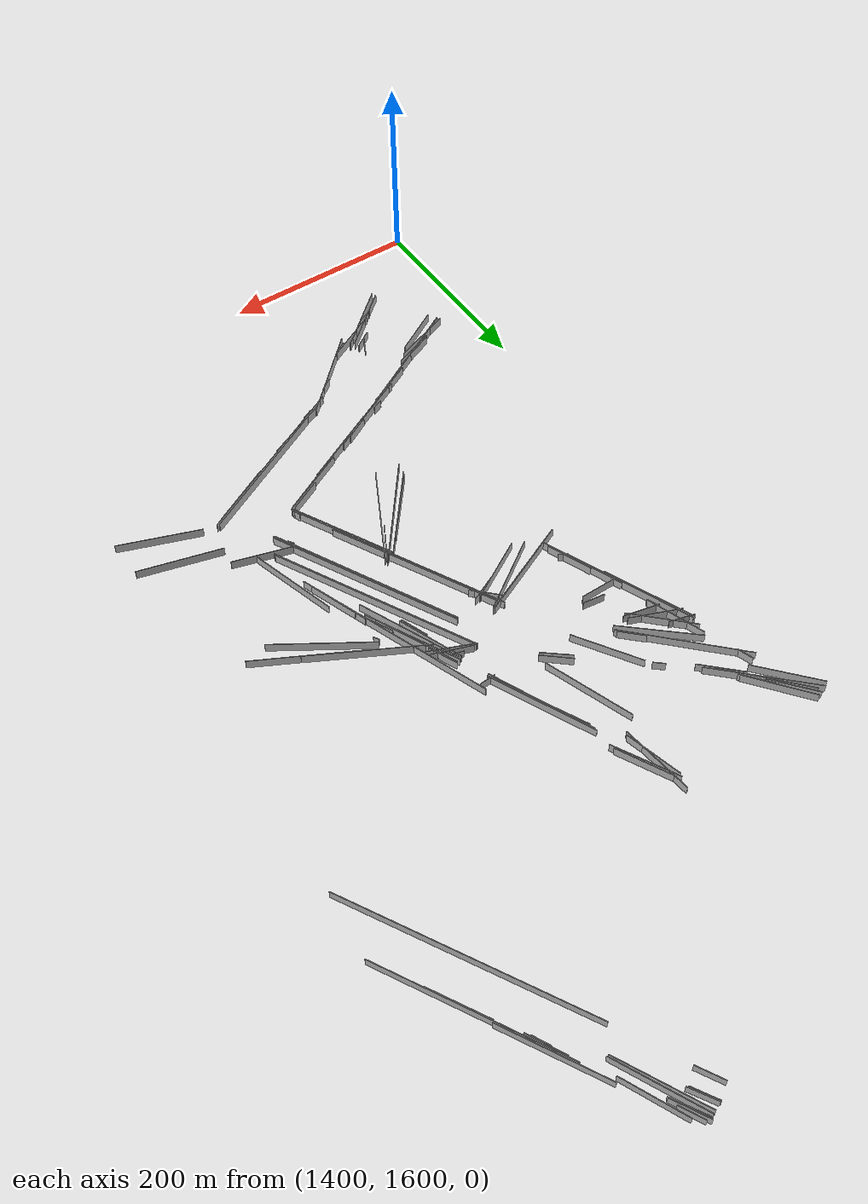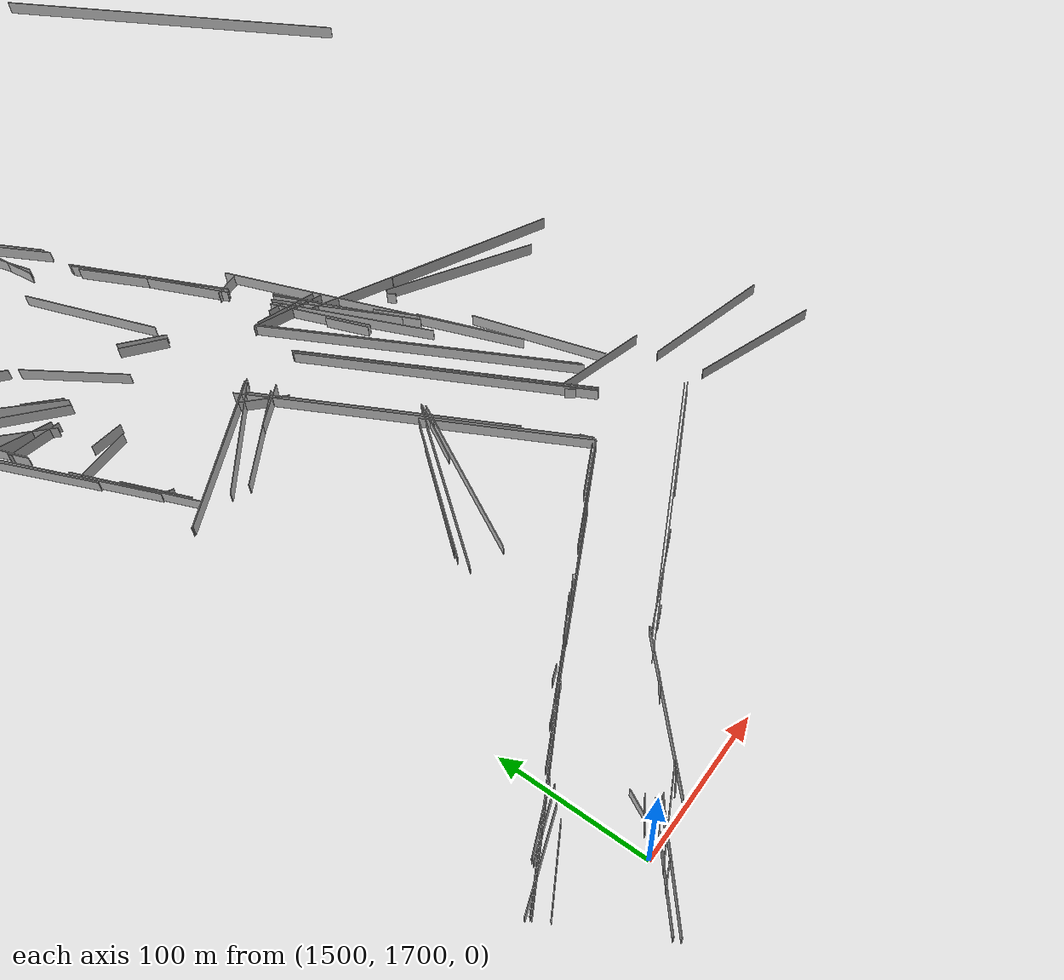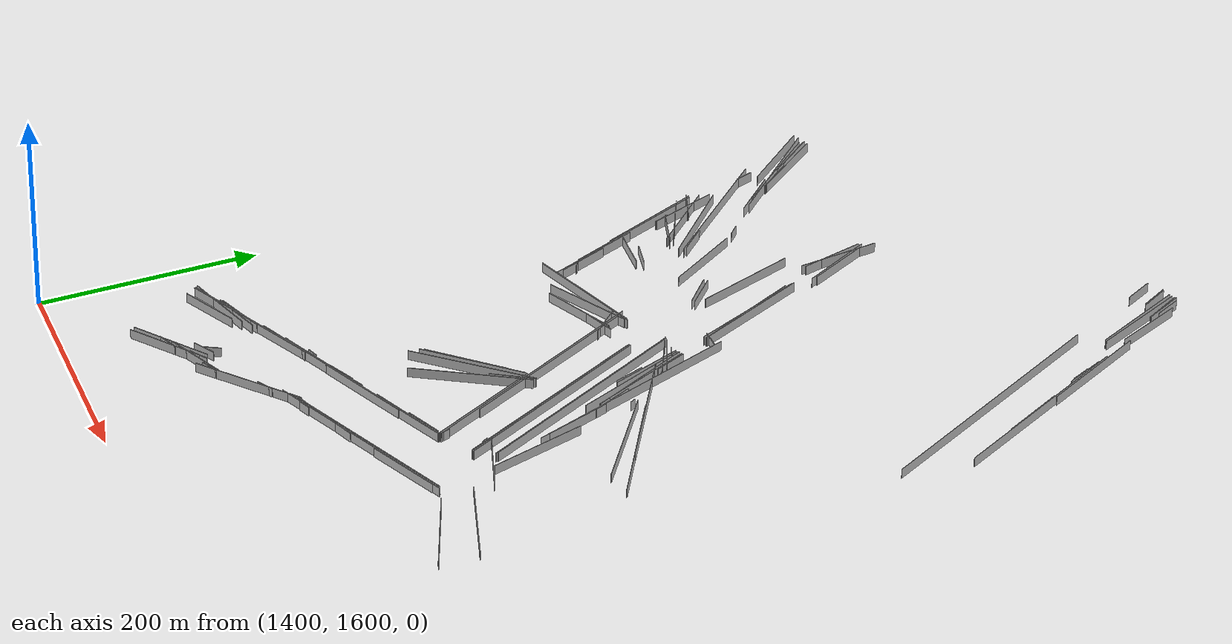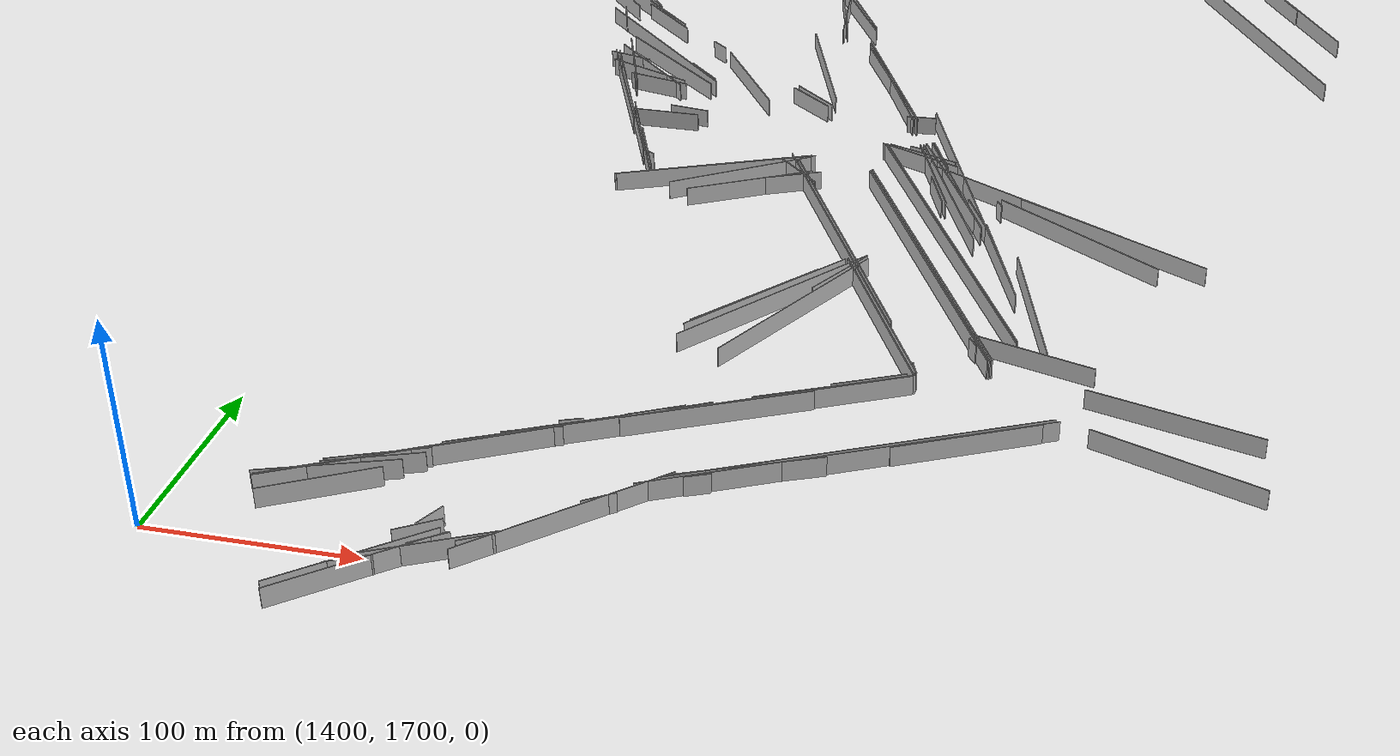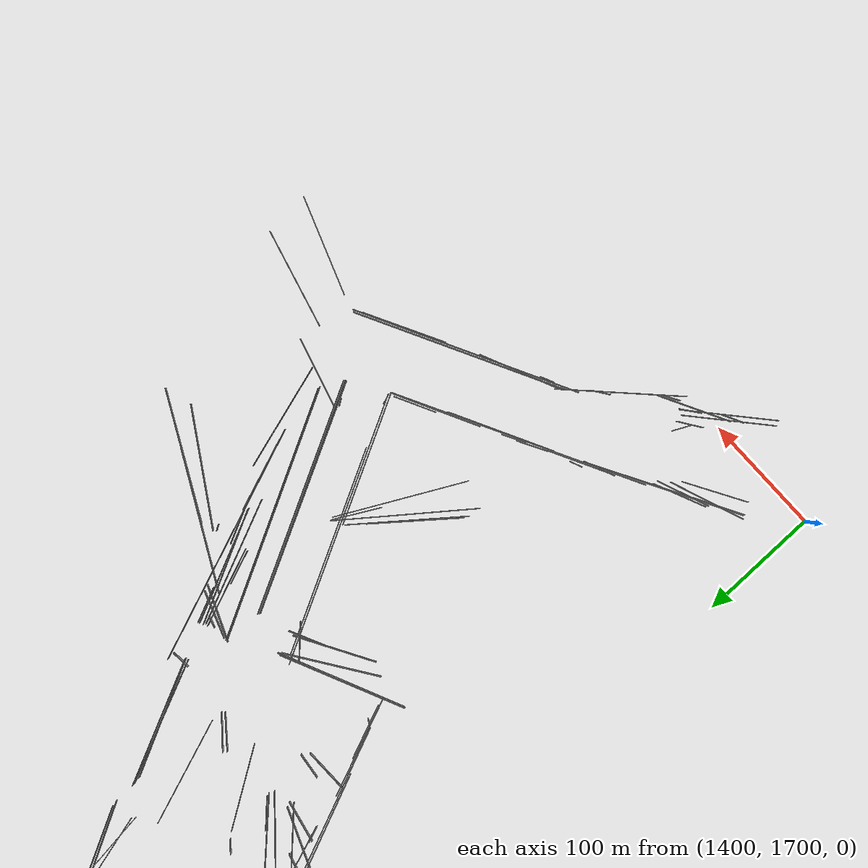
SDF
<sdf version="1.6">
 <model name="Worldsegments">
  <static>1</static>
  <link name="Wall_3">
   <pose>1680.5 1805.0 5.0 0 0 0.47072297</pose>
   <collision name="Wall_3_Collision"><geometry><box><size>189.6233 0.5 10.0</size></box></geometry></collision>
   <visual name="Wall_3_Visual"><geometry><box><size>189.6233 0.5 10.0</size></box></geometry></visual>
  </link>
  <link name="Wall_4">
   <pose>1684.5 1809.0 5.0 0 0 0.47126168</pose>
   <collision name="Wall_4_Collision"><geometry><box><size>176.20726 0.5 10.0</size></box></geometry></collision>
   <visual name="Wall_4_Visual"><geometry><box><size>176.20726 0.5 10.0</size></box></geometry></visual>
  </link>
  <link name="Wall_5">
   <pose>1689.5 2003.0 5.0 0 0 -1.0987632</pose>
   <collision name="Wall_5_Collision"><geometry><box><size>213.32838 0.5 10.0</size></box></geometry></collision>
   <visual name="Wall_5_Visual"><geometry><box><size>213.32838 0.5 10.0</size></box></geometry></visual>
  </link>
  <link name="Wall_6">
   <pose>1601.5 1821.5 5.0 0 0 0.47417355</pose>
   <collision name="Wall_6_Collision"><geometry><box><size>212.43823 0.5 10.0</size></box></geometry></collision>
   <visual name="Wall_6_Visual"><geometry><box><size>212.43823 0.5 10.0</size></box></geometry></visual>
  </link>
  <link name="Wall_7">
   <pose>1697.0 2046.5 5.0 0 0 -1.2195054</pose>
   <collision name="Wall_7_Collision"><geometry><box><size>203.4232 0.5 10.0</size></box></geometry></collision>
   <visual name="Wall_7_Visual"><geometry><box><size>203.4232 0.5 10.0</size></box></geometry></visual>
  </link>
  <link name="Wall_10">
   <pose>1816.5 2333.0 5.0 0 0 -1.0624857</pose>
   <collision name="Wall_10_Collision">
    <geometry><box><size>240.39343 0.5 10.0</size></box></geometry>
   </collision>
   <visual name="Wall_10_Visual"><geometry><box><size>240.39343 0.5 10.0</size></box></geometry></visual>
  </link>
  <link name="Wall_11">
   <pose>1618.5 1927.5 5.0 0 0 0.90530217</pose>
   <collision name="Wall_11_Collision">
    <geometry><box><size>118.22859 0.5 10.0</size></box></geometry>
   </collision>
   <visual name="Wall_11_Visual"><geometry><box><size>118.22859 0.5 10.0</size></box></geometry></visual>
  </link>
  <link name="Wall_14">
   <pose>1686.0 2059.0 5.0 0 0 -1.152572</pose>
   <collision name="Wall_14_Collision"><geometry><box><size>98.48858 0.5 10.0</size></box></geometry></collision>
   <visual name="Wall_14_Visual"><geometry><box><size>98.48858 0.5 10.0</size></box></geometry></visual>
  </link>
  <link name="Wall_15">
   <pose>1683.0 1977.0 5.0 0 0 -1.1025616</pose>
   <collision name="Wall_15_Collision">
    <geometry><box><size>194.98718 0.5 10.0</size></box></geometry>
   </collision>
   <visual name="Wall_15_Visual"><geometry><box><size>194.98718 0.5 10.0</size></box></geometry></visual>
  </link>
  <link name="Wall_16">
   <pose>1573.5 1738.0 5.0 0 0 0.76499283</pose>
   <collision name="Wall_16_Collision">
    <geometry><box><size>103.96634 0.5 10.0</size></box></geometry>
   </collision>
   <visual name="Wall_16_Visual"><geometry><box><size>103.96634 0.5 10.0</size></box></geometry></visual>
  </link>
  <link name="Wall_18">
   <pose>1683.0 2051.5 5.0 0 0 -1.1695676</pose>
   <collision name="Wall_18_Collision">
    <geometry><box><size>107.54069 0.5 10.0</size></box></geometry>
   </collision>
   <visual name="Wall_18_Visual"><geometry><box><size>107.54069 0.5 10.0</size></box></geometry></visual>
  </link>
  <link name="Wall_20">
   <pose>1754.5 2019.5 5.0 0 0 -0.5743048</pose>
   <collision name="Wall_20_Collision">
    <geometry><box><size>101.24229 0.5 10.0</size></box></geometry>
   </collision>
   <visual name="Wall_20_Visual"><geometry><box><size>101.24229 0.5 10.0</size></box></geometry></visual>
  </link>
  <link name="Wall_22">
   <pose>1771.0 2024.0 5.0 0 0 -0.48783645</pose>
   <collision name="Wall_22_Collision">
    <geometry><box><size>110.94143 0.5 10.0</size></box></geometry>
   </collision>
   <visual name="Wall_22_Visual"><geometry><box><size>110.94143 0.5 10.0</size></box></geometry></visual>
  </link>
  <link name="Wall_26">
   <pose>1615.5 1828.0 5.0 0 0 0.46869808</pose>
   <collision name="Wall_26_Collision"><geometry><box><size>88.54942 0.5 10.0</size></box></geometry></collision>
   <visual name="Wall_26_Visual"><geometry><box><size>88.54942 0.5 10.0</size></box></geometry></visual>
  </link>
  <link name="Wall_28">
   <pose>1645.5 1974.0 5.0 0 0 -1.0992594</pose>
   <collision name="Wall_28_Collision">
    <geometry><box><size>226.74435 0.5 10.0</size></box></geometry>
   </collision>
   <visual name="Wall_28_Visual"><geometry><box><size>226.74435 0.5 10.0</size></box></geometry></visual>
  </link>
  <link name="Wall_29">
   <pose>1838.0 2371.5 5.0 0 0 -1.0653013</pose>
   <collision name="Wall_29_Collision">
    <geometry><box><size>181.72781 0.5 10.0</size></box></geometry>
   </collision>
   <visual name="Wall_29_Visual"><geometry><box><size>181.72781 0.5 10.0</size></box></geometry></visual>
  </link>
  <link name="Wall_30">
   <pose>1719.5 2511.5 5.0 0 0 -1.056345</pose>
   <collision name="Wall_30_Collision"><geometry><box><size>26.41969 0.5 10.0</size></box></geometry></collision>
   <visual name="Wall_30_Visual"><geometry><box><size>26.41969 0.5 10.0</size></box></geometry></visual>
  </link>
  <link name="Wall_31">
   <pose>1630.5 2181.0 5.0 0 0 -1.1403315</pose>
   <collision name="Wall_31_Collision">
    <geometry><box><size>107.837845 0.5 10.0</size></box></geometry>
   </collision>
   <visual name="Wall_31_Visual"><geometry><box><size>107.837845 0.5 10.0</size></box></geometry></visual>
  </link>
  <link name="Wall_35">
   <pose>1805.5 2433.5 5.0 0 0 -1.0675219</pose>
   <collision name="Wall_35_Collision">
    <geometry><box><size>101.597244 0.5 10.0</size></box></geometry>
   </collision>
   <visual name="Wall_35_Visual"><geometry><box><size>101.597244 0.5 10.0</size></box></geometry></visual>
  </link>
  <link name="Wall_43">
   <pose>1499.0 1687.5 5.0 0 0 0.4636476</pose>
   <collision name="Wall_43_Collision"><geometry><box><size>20.12461 0.5 10.0</size></box></geometry></collision>
   <visual name="Wall_43_Visual"><geometry><box><size>20.12461 0.5 10.0</size></box></geometry></visual>
  </link>
  <link name="Wall_44">
   <pose>1660.0 2096.5 5.0 0 0 -0.2914568</pose>
   <collision name="Wall_44_Collision">
    <geometry><box><size>10.440307 0.5 10.0</size></box></geometry>
   </collision>
   <visual name="Wall_44_Visual"><geometry><box><size>10.440307 0.5 10.0</size></box></geometry></visual>
  </link>
  <link name="Wall_45">
   <pose>1557.5 2053.0 5.0 0 0 0.41822433</pose>
   <collision name="Wall_45_Collision">
    <geometry><box><size>108.33743 0.5 10.0</size></box></geometry>
   </collision>
   <visual name="Wall_45_Visual"><geometry><box><size>108.33743 0.5 10.0</size></box></geometry></visual>
  </link>
  <link name="Wall_46">
   <pose>1638.5 1991.5 5.0 0 0 -1.0994368</pose>
   <collision name="Wall_46_Collision">
    <geometry><box><size>173.97127 0.5 10.0</size></box></geometry>
   </collision>
   <visual name="Wall_46_Visual"><geometry><box><size>173.97127 0.5 10.0</size></box></geometry></visual>
  </link>
  <link name="Wall_48">
   <pose>1448.5 2283.5 5.0 0 0 -0.9072406</pose>
   <collision name="Wall_48_Collision"><geometry><box><size>69.81404 0.5 10.0</size></box></geometry></collision>
   <visual name="Wall_48_Visual"><geometry><box><size>69.81404 0.5 10.0</size></box></geometry></visual>
  </link>
  <link name="Wall_49">
   <pose>1604.0 1824.0 5.0 0 0 0.5070985</pose>
   <collision name="Wall_49_Collision"><geometry><box><size>20.59126 0.5 10.0</size></box></geometry></collision>
   <visual name="Wall_49_Visual"><geometry><box><size>20.59126 0.5 10.0</size></box></geometry></visual>
  </link>
  <link name="Wall_50">
   <pose>1684.5 1978.5 5.0 0 0 -1.1003151</pose>
   <collision name="Wall_50_Collision">
    <geometry><box><size>196.33136 0.5 10.0</size></box></geometry>
   </collision>
   <visual name="Wall_50_Visual"><geometry><box><size>196.33136 0.5 10.0</size></box></geometry></visual>
  </link>
  <link name="Wall_51">
   <pose>1631.0 2176.5 5.0 0 0 -1.1204222</pose>
   <collision name="Wall_51_Collision">
    <geometry><box><size>101.07918 0.5 10.0</size></box></geometry>
   </collision>
   <visual name="Wall_51_Visual"><geometry><box><size>101.07918 0.5 10.0</size></box></geometry></visual>
  </link>
  <link name="Wall_52">
   <pose>1498.5 2178.5 5.0 0 0 -0.73372006</pose>
   <collision name="Wall_52_Collision"><geometry><box><size>82.13403 0.5 10.0</size></box></geometry></collision>
   <visual name="Wall_52_Visual"><geometry><box><size>82.13403 0.5 10.0</size></box></geometry></visual>
  </link>
  <link name="Wall_55">
   <pose>1753.5 2496.5 5.0 0 0 -1.1019675</pose>
   <collision name="Wall_55_Collision">
    <geometry><box><size>86.313385 0.5 10.0</size></box></geometry>
   </collision>
   <visual name="Wall_55_Visual"><geometry><box><size>86.313385 0.5 10.0</size></box></geometry></visual>
  </link>
  <link name="Wall_56">
   <pose>1435.0 2295.5 5.0 0 0 -0.8794594</pose>
   <collision name="Wall_56_Collision"><geometry><box><size>37.64306 0.5 10.0</size></box></geometry></collision>
   <visual name="Wall_56_Visual"><geometry><box><size>37.64306 0.5 10.0</size></box></geometry></visual>
  </link>
  <link name="Wall_57">
   <pose>1756.0 2497.0 5.0 0 0 -1.1174576</pose>
   <collision name="Wall_57_Collision">
    <geometry><box><size>86.764046 0.5 10.0</size></box></geometry>
   </collision>
   <visual name="Wall_57_Visual"><geometry><box><size>86.764046 0.5 10.0</size></box></geometry></visual>
  </link>
  <link name="Wall_60">
   <pose>1671.0 1920.0 5.0 0 0 -1.0990188</pose>
   <collision name="Wall_60_Collision">
    <geometry><box><size>110.01818 0.5 10.0</size></box></geometry>
   </collision>
   <visual name="Wall_60_Visual"><geometry><box><size>110.01818 0.5 10.0</size></box></geometry></visual>
  </link>
  <link name="Wall_63">
   <pose>1663.0 2091.0 5.0 0 0 -0.3529904</pose>
   <collision name="Wall_63_Collision">
    <geometry><box><size>40.496914 0.5 10.0</size></box></geometry>
   </collision>
   <visual name="Wall_63_Visual"><geometry><box><size>40.496914 0.5 10.0</size></box></geometry></visual>
  </link>
  <link name="Wall_68">
   <pose>1614.0 1929.5 5.0 0 0 0.8928958</pose>
   <collision name="Wall_68_Collision"><geometry><box><size>98.85848 0.5 10.0</size></box></geometry></collision>
   <visual name="Wall_68_Visual"><geometry><box><size>98.85848 0.5 10.0</size></box></geometry></visual>
  </link>
  <link name="Wall_69">
   <pose>1740.5 1945.5 5.0 0 0 -1.2909793</pose>
   <collision name="Wall_69_Collision"><geometry><box><size>90.52071 0.5 10.0</size></box></geometry></collision>
   <visual name="Wall_69_Visual"><geometry><box><size>90.52071 0.5 10.0</size></box></geometry></visual>
  </link>
  <link name="Wall_70">
   <pose>1594.0 2277.5 5.0 0 0 -1.0993364</pose>
   <collision name="Wall_70_Collision">
    <geometry><box><size>57.245087 0.5 10.0</size></box></geometry>
   </collision>
   <visual name="Wall_70_Visual"><geometry><box><size>57.245087 0.5 10.0</size></box></geometry></visual>
  </link>
  <link name="Wall_75">
   <pose>1808.0 2421.0 5.0 0 0 -1.1071488</pose>
   <collision name="Wall_75_Collision">
    <geometry><box><size>17.888544 0.5 10.0</size></box></geometry>
   </collision>
   <visual name="Wall_75_Visual"><geometry><box><size>17.888544 0.5 10.0</size></box></geometry></visual>
  </link>
  <link name="Wall_77">
   <pose>1842.5 2362.0 5.0 0 0 -1.0620666</pose>
   <collision name="Wall_77_Collision"><geometry><box><size>59.5399 0.5 10.0</size></box></geometry></collision>
   <visual name="Wall_77_Visual"><geometry><box><size>59.5399 0.5 10.0</size></box></geometry></visual>
  </link>
  <link name="Wall_79">
   <pose>1725.0 2049.0 5.0 0 0 -0.49394137</pose>
   <collision name="Wall_79_Collision">
    <geometry><box><size>118.11858 0.5 10.0</size></box></geometry>
   </collision>
   <visual name="Wall_79_Visual"><geometry><box><size>118.11858 0.5 10.0</size></box></geometry></visual>
  </link>
  <link name="Wall_80">
   <pose>1495.0 1764.0 5.0 0 0 0.50416595</pose>
   <collision name="Wall_80_Collision">
    <geometry><box><size>132.48396 0.5 10.0</size></box></geometry>
   </collision>
   <visual name="Wall_80_Visual"><geometry><box><size>132.48396 0.5 10.0</size></box></geometry></visual>
  </link>
  <link name="Wall_82">
   <pose>1554.5 1798.5 5.0 0 0 0.4717775</pose>
   <collision name="Wall_82_Collision"><geometry><box><size>55.00909 0.5 10.0</size></box></geometry></collision>
   <visual name="Wall_82_Visual"><geometry><box><size>55.00909 0.5 10.0</size></box></geometry></visual>
  </link>
  <link name="Wall_85">
   <pose>1489.0 2123.5 5.0 0 0 -1.1846956</pose>
   <collision name="Wall_85_Collision">
    <geometry><box><size>132.77425 0.5 10.0</size></box></geometry>
   </collision>
   <visual name="Wall_85_Visual"><geometry><box><size>132.77425 0.5 10.0</size></box></geometry></visual>
  </link>
  <link name="Wall_86">
   <pose>1525.0 1704.0 5.0 0 0 0.47835243</pose>
   <collision name="Wall_86_Collision">
    <geometry><box><size>60.827625 0.5 10.0</size></box></geometry>
   </collision>
   <visual name="Wall_86_Visual"><geometry><box><size>60.827625 0.5 10.0</size></box></geometry></visual>
  </link>
  <link name="Wall_88">
   <pose>1690.0 2004.0 5.0 0 0 -1.0986743</pose>
   <collision name="Wall_88_Collision">
    <geometry><box><size>211.09239 0.5 10.0</size></box></geometry>
   </collision>
   <visual name="Wall_88_Visual"><geometry><box><size>211.09239 0.5 10.0</size></box></geometry></visual>
  </link>
  <link name="Wall_89">
   <pose>1520.5 2167.5 5.0 0 0 -0.7853982</pose>
   <collision name="Wall_89_Collision">
    <geometry><box><size>26.870058 0.5 10.0</size></box></geometry>
   </collision>
   <visual name="Wall_89_Visual"><geometry><box><size>26.870058 0.5 10.0</size></box></geometry></visual>
  </link>
  <link name="Wall_90">
   <pose>1645.0 1955.0 5.0 0 0 1.0636978</pose>
   <collision name="Wall_90_Collision"><geometry><box><size>41.18252 0.5 10.0</size></box></geometry></collision>
   <visual name="Wall_90_Visual"><geometry><box><size>41.18252 0.5 10.0</size></box></geometry></visual>
  </link>
  <link name="Wall_92">
   <pose>1718.0 1905.0 5.0 0 0 -0.98279375</pose>
   <collision name="Wall_92_Collision">
    <geometry><box><size>7.2111025 0.5 10.0</size></box></geometry>
   </collision>
   <visual name="Wall_92_Visual"><geometry><box><size>7.2111025 0.5 10.0</size></box></geometry></visual>
  </link>
  <link name="Wall_93">
   <pose>1465.5 1736.5 5.0 0 0 0.5214344</pose>
   <collision name="Wall_93_Collision"><geometry><box><size>54.20332 0.5 10.0</size></box></geometry></collision>
   <visual name="Wall_93_Visual"><geometry><box><size>54.20332 0.5 10.0</size></box></geometry></visual>
  </link>
  <link name="Wall_95">
   <pose>1662.0 2088.5 5.0 0 0 -0.40763152</pose>
   <collision name="Wall_95_Collision"><geometry><box><size>47.92703 0.5 10.0</size></box></geometry></collision>
   <visual name="Wall_95_Visual"><geometry><box><size>47.92703 0.5 10.0</size></box></geometry></visual>
  </link>
  <link name="Wall_99">
   <pose>1508.5 2078.5 5.0 0 0 -1.1968544</pose>
   <collision name="Wall_99_Collision"><geometry><box><size>84.8646 0.5 10.0</size></box></geometry></collision>
   <visual name="Wall_99_Visual"><geometry><box><size>84.8646 0.5 10.0</size></box></geometry></visual>
  </link>
  <link name="Wall_104">
   <pose>1518.0 1715.0 5.0 0 0 0.5880026</pose>
   <collision name="Wall_104_Collision">
    <geometry><box><size>21.633308 0.5 10.0</size></box></geometry>
   </collision>
   <visual name="Wall_104_Visual"><geometry><box><size>21.633308 0.5 10.0</size></box></geometry></visual>
  </link>
  <link name="Wall_105">
   <pose>1588.0 2192.0 5.0 0 0 -1.2351577</pose>
   <collision name="Wall_105_Collision">
    <geometry><box><size>91.08238 0.5 10.0</size></box></geometry>
   </collision>
   <visual name="Wall_105_Visual"><geometry><box><size>91.08238 0.5 10.0</size></box></geometry></visual>
  </link>
  <link name="Wall_106">
   <pose>1502.5 1687.5 5.0 0 0 0.7127987</pose>
   <collision name="Wall_106_Collision">
    <geometry><box><size>77.987175 0.5 10.0</size></box></geometry>
   </collision>
   <visual name="Wall_106_Visual"><geometry><box><size>77.987175 0.5 10.0</size></box></geometry></visual>
  </link>
  <link name="Wall_108">
   <pose>1548.0 2167.0 5.0 0 0 -1.0062269</pose>
   <collision name="Wall_108_Collision">
    <geometry><box><size>71.021126 0.5 10.0</size></box></geometry>
   </collision>
   <visual name="Wall_108_Visual"><geometry><box><size>71.021126 0.5 10.0</size></box></geometry></visual>
  </link>
  <link name="Wall_109">
   <pose>1630.0 1922.0 5.0 0 0 1.0829599</pose>
   <collision name="Wall_109_Collision">
    <geometry><box><size>110.94143 0.5 10.0</size></box></geometry>
   </collision>
   <visual name="Wall_109_Visual"><geometry><box><size>110.94143 0.5 10.0</size></box></geometry></visual>
  </link>
  <link name="Wall_111">
   <pose>1806.5 2425.5 5.0 0 0 -1.0951011</pose>
   <collision name="Wall_111_Collision">
    <geometry><box><size>37.12142 0.5 10.0</size></box></geometry>
   </collision>
   <visual name="Wall_111_Visual"><geometry><box><size>37.12142 0.5 10.0</size></box></geometry></visual>
  </link>
  <link name="Wall_113">
   <pose>1489.0 2162.0 5.0 0 0 -0.39479113</pose>
   <collision name="Wall_113_Collision"><geometry><box><size>52.0 0.5 10.0</size></box></geometry></collision>
   <visual name="Wall_113_Visual"><geometry><box><size>52.0 0.5 10.0</size></box></geometry></visual>
  </link>
  <link name="Wall_114">
   <pose>1556.0 1802.0 5.0 0 0 0.38050637</pose>
   <collision name="Wall_114_Collision">
    <geometry><box><size>10.770329 0.5 10.0</size></box></geometry>
   </collision>
   <visual name="Wall_114_Visual"><geometry><box><size>10.770329 0.5 10.0</size></box></geometry></visual>
  </link>
  <link name="Wall_115">
   <pose>1487.0 2200.5 5.0 0 0 -0.8021564</pose>
   <collision name="Wall_115_Collision">
    <geometry><box><size>126.58989 0.5 10.0</size></box></geometry>
   </collision>
   <visual name="Wall_115_Visual"><geometry><box><size>126.58989 0.5 10.0</size></box></geometry></visual>
  </link>
  <link name="Wall_117">
   <pose>1520.5 2206.0 5.0 0 0 -0.7266424</pose>
   <collision name="Wall_117_Collision">
    <geometry><box><size>12.0415945 0.5 10.0</size></box></geometry>
   </collision>
   <visual name="Wall_117_Visual"><geometry><box><size>12.0415945 0.5 10.0</size></box></geometry></visual>
  </link>
  <link name="Wall_119">
   <pose>1439.0 2290.0 5.0 0 0 -0.87605804</pose>
   <collision name="Wall_119_Collision"><geometry><box><size>46.8615 0.5 10.0</size></box></geometry></collision>
   <visual name="Wall_119_Visual"><geometry><box><size>46.8615 0.5 10.0</size></box></geometry></visual>
  </link>
  <link name="Wall_120">
   <pose>1683.5 1977.5 5.0 0 0 -1.1003151</pose>
   <collision name="Wall_120_Collision">
    <geometry><box><size>196.33136 0.5 10.0</size></box></geometry>
   </collision>
   <visual name="Wall_120_Visual"><geometry><box><size>196.33136 0.5 10.0</size></box></geometry></visual>
  </link>
  <link name="Wall_121">
   <pose>1434.5 2278.0 5.0 0 0 -0.8574382</pose>
   <collision name="Wall_121_Collision">
    <geometry><box><size>68.76772 0.5 10.0</size></box></geometry>
   </collision>
   <visual name="Wall_121_Visual"><geometry><box><size>68.76772 0.5 10.0</size></box></geometry></visual>
  </link>
  <link name="Wall_122">
   <pose>1601.5 2056.5 5.0 0 0 -0.7853982</pose>
   <collision name="Wall_122_Collision">
    <geometry><box><size>32.526913 0.5 10.0</size></box></geometry>
   </collision>
   <visual name="Wall_122_Visual"><geometry><box><size>32.526913 0.5 10.0</size></box></geometry></visual>
  </link>
  <link name="Wall_123">
   <pose>1749.5 2526.5 5.0 0 0 -1.0882831</pose>
   <collision name="Wall_123_Collision">
    <geometry><box><size>23.70654 0.5 10.0</size></box></geometry>
   </collision>
   <visual name="Wall_123_Visual"><geometry><box><size>23.70654 0.5 10.0</size></box></geometry></visual>
  </link>
  <link name="Wall_126">
   <pose>1584.5 1749.5 5.0 0 0 0.6055447</pose>
   <collision name="Wall_126_Collision">
    <geometry><box><size>15.811388 0.5 10.0</size></box></geometry>
   </collision>
   <visual name="Wall_126_Visual"><geometry><box><size>15.811388 0.5 10.0</size></box></geometry></visual>
  </link>
  <link name="Wall_127">
   <pose>1499.5 1690.5 5.0 0 0 0.7100693</pose>
   <collision name="Wall_127_Collision">
    <geometry><box><size>75.16648 0.5 10.0</size></box></geometry>
   </collision>
   <visual name="Wall_127_Visual"><geometry><box><size>75.16648 0.5 10.0</size></box></geometry></visual>
  </link>
  <link name="Wall_130">
   <pose>1591.0 2149.5 5.0 0 0 -0.71883</pose>
   <collision name="Wall_130_Collision">
    <geometry><box><size>31.890438 0.5 10.0</size></box></geometry>
   </collision>
   <visual name="Wall_130_Visual"><geometry><box><size>31.890438 0.5 10.0</size></box></geometry></visual>
  </link>
  <link name="Wall_131">
   <pose>1609.5 1925.0 5.0 0 0 0.88597506</pose>
   <collision name="Wall_131_Collision">
    <geometry><box><size>77.46612 0.5 10.0</size></box></geometry>
   </collision>
   <visual name="Wall_131_Visual"><geometry><box><size>77.46612 0.5 10.0</size></box></geometry></visual>
  </link>
  <link name="Wall_132">
   <pose>1465.0 1746.0 5.0 0 0 0.35144478</pose>
   <collision name="Wall_132_Collision">
    <geometry><box><size>63.90618 0.5 10.0</size></box></geometry>
   </collision>
   <visual name="Wall_132_Visual"><geometry><box><size>63.90618 0.5 10.0</size></box></geometry></visual>
  </link>
  <link name="Wall_134">
   <pose>1765.0 2502.0 5.0 0 0 -1.1361262</pose>
   <collision name="Wall_134_Collision">
    <geometry><box><size>61.741398 0.5 10.0</size></box></geometry>
   </collision>
   <visual name="Wall_134_Visual"><geometry><box><size>61.741398 0.5 10.0</size></box></geometry></visual>
  </link>
  <link name="Wall_135">
   <pose>1663.0 1854.0 5.0 0 0 0.4636476</pose>
   <collision name="Wall_135_Collision">
    <geometry><box><size>76.02631 0.5 10.0</size></box></geometry>
   </collision>
   <visual name="Wall_135_Visual"><geometry><box><size>76.02631 0.5 10.0</size></box></geometry></visual>
  </link>
  <link name="Wall_139">
   <pose>1590.0 1817.5 5.0 0 0 0.49642277</pose>
   <collision name="Wall_139_Collision">
    <geometry><box><size>27.294687 0.5 10.0</size></box></geometry>
   </collision>
   <visual name="Wall_139_Visual"><geometry><box><size>27.294687 0.5 10.0</size></box></geometry></visual>
  </link>
  <link name="Wall_140">
   <pose>1476.0 2174.5 5.0 0 0 -1.2333403</pose>
   <collision name="Wall_140_Collision">
    <geometry><box><size>60.40695 0.5 10.0</size></box></geometry>
   </collision>
   <visual name="Wall_140_Visual"><geometry><box><size>60.40695 0.5 10.0</size></box></geometry></visual>
  </link>
  <link name="Wall_143">
   <pose>1489.0 1761.5 5.0 0 0 0.50136554</pose>
   <collision name="Wall_143_Collision">
    <geometry><box><size>118.595955 0.5 10.0</size></box></geometry>
   </collision>
   <visual name="Wall_143_Visual"><geometry><box><size>118.595955 0.5 10.0</size></box></geometry></visual>
  </link>
  <link name="Wall_144">
   <pose>1616.0 2210.0 5.0 0 0 -1.152572</pose>
   <collision name="Wall_144_Collision">
    <geometry><box><size>39.39543 0.5 10.0</size></box></geometry>
   </collision>
   <visual name="Wall_144_Visual"><geometry><box><size>39.39543 0.5 10.0</size></box></geometry></visual>
  </link>
  <link name="Wall_145">
   <pose>1454.0 2269.0 5.0 0 0 -0.7853982</pose>
   <collision name="Wall_145_Collision">
    <geometry><box><size>107.48023 0.5 10.0</size></box></geometry>
   </collision>
   <visual name="Wall_145_Visual"><geometry><box><size>107.48023 0.5 10.0</size></box></geometry></visual>
  </link>
  <link name="Wall_146">
   <pose>1460.5 2267.0 5.0 0 0 -0.8913825</pose>
   <collision name="Wall_146_Collision">
    <geometry><box><size>33.42155 0.5 10.0</size></box></geometry>
   </collision>
   <visual name="Wall_146_Visual"><geometry><box><size>33.42155 0.5 10.0</size></box></geometry></visual>
  </link>
  <link name="Wall_149">
   <pose>1620.5 1773.5 5.0 0 0 0.4266275</pose>
   <collision name="Wall_149_Collision">
    <geometry><box><size>12.083046 0.5 10.0</size></box></geometry>
   </collision>
   <visual name="Wall_149_Visual"><geometry><box><size>12.083046 0.5 10.0</size></box></geometry></visual>
  </link>
  <link name="Wall_152">
   <pose>1684.5 2059.0 5.0 0 0 -1.1162809</pose>
   <collision name="Wall_152_Collision">
    <geometry><box><size>97.94386 0.5 10.0</size></box></geometry>
   </collision>
   <visual name="Wall_152_Visual"><geometry><box><size>97.94386 0.5 10.0</size></box></geometry></visual>
  </link>
  <link name="Wall_153">
   <pose>1748.5 2523.5 5.0 0 0 -1.0691923</pose>
   <collision name="Wall_153_Collision">
    <geometry><box><size>35.35534 0.5 10.0</size></box></geometry>
   </collision>
   <visual name="Wall_153_Visual"><geometry><box><size>35.35534 0.5 10.0</size></box></geometry></visual>
  </link>
  <link name="Wall_154">
   <pose>1556.0 2053.0 5.0 0 0 0.42200503</pose>
   <collision name="Wall_154_Collision">
    <geometry><box><size>107.42439 0.5 10.0</size></box></geometry>
   </collision>
   <visual name="Wall_154_Visual"><geometry><box><size>107.42439 0.5 10.0</size></box></geometry></visual>
  </link>
  <link name="Wall_155">
   <pose>1813.5 1865.0 5.0 0 0 -0.2652071</pose>
   <collision name="Wall_155_Collision"><geometry><box><size>83.9345 0.5 10.0</size></box></geometry></collision>
   <visual name="Wall_155_Visual"><geometry><box><size>83.9345 0.5 10.0</size></box></geometry></visual>
  </link>
  <link name="Wall_159">
   <pose>1703.5 2026.0 5.0 0 0 -1.1296169</pose>
   <collision name="Wall_159_Collision">
    <geometry><box><size>39.812057 0.5 10.0</size></box></geometry>
   </collision>
   <visual name="Wall_159_Visual"><geometry><box><size>39.812057 0.5 10.0</size></box></geometry></visual>
  </link>
  <link name="Wall_160">
   <pose>1525.0 2117.5 5.0 0 0 -0.13552772</pose>
   <collision name="Wall_160_Collision">
    <geometry><box><size>22.203604 0.5 10.0</size></box></geometry>
   </collision>
   <visual name="Wall_160_Visual"><geometry><box><size>22.203604 0.5 10.0</size></box></geometry></visual>
  </link>
  <link name="Wall_162">
   <pose>1734.0 2520.5 5.0 0 0 -1.0240074</pose>
   <collision name="Wall_162_Collision">
    <geometry><box><size>26.925823 0.5 10.0</size></box></geometry>
   </collision>
   <visual name="Wall_162_Visual"><geometry><box><size>26.925823 0.5 10.0</size></box></geometry></visual>
  </link>
  <link name="Wall_168">
   <pose>1544.0 1712.0 5.0 0 0 0.5191461</pose>
   <collision name="Wall_168_Collision">
    <geometry><box><size>16.124516 0.5 10.0</size></box></geometry>
   </collision>
   <visual name="Wall_168_Visual"><geometry><box><size>16.124516 0.5 10.0</size></box></geometry></visual>
  </link>
  <link name="Wall_169">
   <pose>1513.5 2110.0 5.0 0 0 0.0</pose>
   <collision name="Wall_169_Collision"><geometry><box><size>37.0 0.5 10.0</size></box></geometry></collision>
   <visual name="Wall_169_Visual"><geometry><box><size>37.0 0.5 10.0</size></box></geometry></visual>
  </link>
  <link name="Wall_171">
   <pose>1677.0 2051.5 5.0 0 0 -1.2160907</pose>
   <collision name="Wall_171_Collision">
    <geometry><box><size>28.79236 0.5 10.0</size></box></geometry>
   </collision>
   <visual name="Wall_171_Visual"><geometry><box><size>28.79236 0.5 10.0</size></box></geometry></visual>
  </link>
  <link name="Wall_172">
   <pose>1451.5 2241.5 5.0 0 0 -1.2490457</pose>
   <collision name="Wall_172_Collision">
    <geometry><box><size>15.811388 0.5 10.0</size></box></geometry>
   </collision>
   <visual name="Wall_172_Visual"><geometry><box><size>15.811388 0.5 10.0</size></box></geometry></visual>
  </link>
  <link name="Wall_178">
   <pose>1600.0 2050.5 5.0 0 0 0.4346702</pose>
   <collision name="Wall_178_Collision">
    <geometry><box><size>30.870699 0.5 10.0</size></box></geometry>
   </collision>
   <visual name="Wall_178_Visual"><geometry><box><size>30.870699 0.5 10.0</size></box></geometry></visual>
  </link>
  <link name="Wall_180">
   <pose>1483.0 1759.0 5.0 0 0 0.4048918</pose>
   <collision name="Wall_180_Collision">
    <geometry><box><size>45.694637 0.5 10.0</size></box></geometry>
   </collision>
   <visual name="Wall_180_Visual"><geometry><box><size>45.694637 0.5 10.0</size></box></geometry></visual>
  </link>
  <link name="Wall_181">
   <pose>1673.0 2091.0 5.0 0 0 -1.1659045</pose>
   <collision name="Wall_181_Collision">
    <geometry><box><size>30.463093 0.5 10.0</size></box></geometry>
   </collision>
   <visual name="Wall_181_Visual"><geometry><box><size>30.463093 0.5 10.0</size></box></geometry></visual>
  </link>
  <link name="Wall_182">
   <pose>1483.5 2151.5 5.0 0 0 -1.2036225</pose>
   <collision name="Wall_182_Collision">
    <geometry><box><size>13.928389 0.5 10.0</size></box></geometry>
   </collision>
   <visual name="Wall_182_Visual"><geometry><box><size>13.928389 0.5 10.0</size></box></geometry></visual>
  </link>
  <link name="Wall_183">
   <pose>1748.0 2522.5 5.0 0 0 -1.04473</pose>
   <collision name="Wall_183_Collision">
    <geometry><box><size>35.846897 0.5 10.0</size></box></geometry>
   </collision>
   <visual name="Wall_183_Visual"><geometry><box><size>35.846897 0.5 10.0</size></box></geometry></visual>
  </link>
  <link name="Wall_185">
   <pose>1488.0 2170.0 5.0 0 0 -0.7853982</pose>
   <collision name="Wall_185_Collision">
    <geometry><box><size>67.88225 0.5 10.0</size></box></geometry>
   </collision>
   <visual name="Wall_185_Visual"><geometry><box><size>67.88225 0.5 10.0</size></box></geometry></visual>
  </link>
  <link name="Wall_187">
   <pose>1672.0 2069.5 5.0 0 0 -1.2068174</pose>
   <collision name="Wall_187_Collision">
    <geometry><box><size>67.41662 0.5 10.0</size></box></geometry>
   </collision>
   <visual name="Wall_187_Visual"><geometry><box><size>67.41662 0.5 10.0</size></box></geometry></visual>
  </link>
  <link name="Wall_188">
   <pose>1584.0 2281.0 5.0 0 0 -1.4601392</pose>
   <collision name="Wall_188_Collision">
    <geometry><box><size>72.443085 0.5 10.0</size></box></geometry>
   </collision>
   <visual name="Wall_188_Visual"><geometry><box><size>72.443085 0.5 10.0</size></box></geometry></visual>
  </link>
  <link name="Wall_192">
   <pose>1482.0 1756.0 5.0 0 0 0.36397895</pose>
   <collision name="Wall_192_Collision">
    <geometry><box><size>44.94441 0.5 10.0</size></box></geometry>
   </collision>
   <visual name="Wall_192_Visual"><geometry><box><size>44.94441 0.5 10.0</size></box></geometry></visual>
  </link>
  <link name="Wall_193">
   <pose>1514.5 2066.5 5.0 0 0 -1.194306</pose>
   <collision name="Wall_193_Collision">
    <geometry><box><size>46.238514 0.5 10.0</size></box></geometry>
   </collision>
   <visual name="Wall_193_Visual"><geometry><box><size>46.238514 0.5 10.0</size></box></geometry></visual>
  </link>
  <link name="Wall_197">
   <pose>1718.5 1989.5 5.0 0 0 -1.2288465</pose>
   <collision name="Wall_197_Collision">
    <geometry><box><size>62.625874 0.5 10.0</size></box></geometry>
   </collision>
   <visual name="Wall_197_Visual"><geometry><box><size>62.625874 0.5 10.0</size></box></geometry></visual>
  </link>
  <link name="Wall_199">
   <pose>1711.5 2042.5 5.0 0 0 -1.0303768</pose>
   <collision name="Wall_199_Collision">
    <geometry><box><size>5.8309517 0.5 10.0</size></box></geometry>
   </collision>
   <visual name="Wall_199_Visual"><geometry><box><size>5.8309517 0.5 10.0</size></box></geometry></visual>
  </link>
  <link name="Wall_200">
   <pose>1677.0 1863.0 5.0 0 0 0.4636476</pose>
   <collision name="Wall_200_Collision">
    <geometry><box><size>35.77709 0.5 10.0</size></box></geometry>
   </collision>
   <visual name="Wall_200_Visual"><geometry><box><size>35.77709 0.5 10.0</size></box></geometry></visual>
  </link>
  <link name="Wall_201">
   <pose>1518.5 2059.5 5.0 0 0 -0.5404195</pose>
   <collision name="Wall_201_Collision">
    <geometry><box><size>5.8309517 0.5 10.0</size></box></geometry>
   </collision>
   <visual name="Wall_201_Visual"><geometry><box><size>5.8309517 0.5 10.0</size></box></geometry></visual>
  </link>
  <link name="Wall_202">
   <pose>1639.5 1785.0 5.0 0 0 0.41822433</pose>
   <collision name="Wall_202_Collision"><geometry><box><size>68.942 0.5 10.0</size></box></geometry></collision>
   <visual name="Wall_202_Visual"><geometry><box><size>68.942 0.5 10.0</size></box></geometry></visual>
  </link>
  <link name="Wall_203">
   <pose>1732.5 2521.0 5.0 0 0 -1.0370882</pose>
   <collision name="Wall_203_Collision">
    <geometry><box><size>25.553865 0.5 10.0</size></box></geometry>
   </collision>
   <visual name="Wall_203_Visual"><geometry><box><size>25.553865 0.5 10.0</size></box></geometry></visual>
  </link>
  <link name="Wall_205">
   <pose>1592.5 2276.5 5.0 0 0 -1.0870172</pose>
   <collision name="Wall_205_Collision">
    <geometry><box><size>66.64833 0.5 10.0</size></box></geometry>
   </collision>
   <visual name="Wall_205_Visual"><geometry><box><size>66.64833 0.5 10.0</size></box></geometry></visual>
  </link>
  <link name="Wall_207">
   <pose>1655.0 2134.5 5.0 0 0 0.06241881</pose>
   <collision name="Wall_207_Collision">
    <geometry><box><size>16.03122 0.5 10.0</size></box></geometry>
   </collision>
   <visual name="Wall_207_Visual"><geometry><box><size>16.03122 0.5 10.0</size></box></geometry></visual>
  </link>
  <link name="Wall_208">
   <pose>1497.5 2152.0 5.0 0 0 -0.22471116</pose>
   <collision name="Wall_208_Collision">
    <geometry><box><size>35.902645 0.5 10.0</size></box></geometry>
   </collision>
   <visual name="Wall_208_Visual"><geometry><box><size>35.902645 0.5 10.0</size></box></geometry></visual>
  </link>
  <link name="Wall_212">
   <pose>1479.0 2241.0 5.0 0 0 -0.7853982</pose>
   <collision name="Wall_212_Collision">
    <geometry><box><size>45.254833 0.5 10.0</size></box></geometry>
   </collision>
   <visual name="Wall_212_Visual"><geometry><box><size>45.254833 0.5 10.0</size></box></geometry></visual>
  </link>
  <link name="Wall_214">
   <pose>1817.0 1830.5 5.0 0 0 -0.35595775</pose>
   <collision name="Wall_214_Collision">
    <geometry><box><size>83.21658 0.5 10.0</size></box></geometry>
   </collision>
   <visual name="Wall_214_Visual"><geometry><box><size>83.21658 0.5 10.0</size></box></geometry></visual>
  </link>
  <link name="Wall_217">
   <pose>1747.0 1902.5 5.0 0 0 -0.28511775</pose>
   <collision name="Wall_217_Collision">
    <geometry><box><size>60.440052 0.5 10.0</size></box></geometry>
   </collision>
   <visual name="Wall_217_Visual"><geometry><box><size>60.440052 0.5 10.0</size></box></geometry></visual>
  </link>
  <link name="Wall_220">
   <pose>1472.5 2179.5 5.0 0 0 -0.2730087</pose>
   <collision name="Wall_220_Collision">
    <geometry><box><size>25.96151 0.5 10.0</size></box></geometry>
   </collision>
   <visual name="Wall_220_Visual"><geometry><box><size>25.96151 0.5 10.0</size></box></geometry></visual>
  </link>
  <link name="Wall_221">
   <pose>1589.0 2147.0 5.0 0 0 -0.69473827</pose>
   <collision name="Wall_221_Collision"><geometry><box><size>31.241 0.5 10.0</size></box></geometry></collision>
   <visual name="Wall_221_Visual"><geometry><box><size>31.241 0.5 10.0</size></box></geometry></visual>
  </link>
  <link name="Wall_229">
   <pose>1695.5 1876.5 5.0 0 0 -1.2490457</pose>
   <collision name="Wall_229_Collision">
    <geometry><box><size>9.486833 0.5 10.0</size></box></geometry>
   </collision>
   <visual name="Wall_229_Visual"><geometry><box><size>9.486833 0.5 10.0</size></box></geometry></visual>
  </link>
  <link name="Wall_231">
   <pose>1727.0 1828.0 5.0 0 0 0.47646743</pose>
   <collision name="Wall_231_Collision">
    <geometry><box><size>69.77106 0.5 10.0</size></box></geometry>
   </collision>
   <visual name="Wall_231_Visual"><geometry><box><size>69.77106 0.5 10.0</size></box></geometry></visual>
  </link>
  <link name="Wall_233">
   <pose>1579.0 2040.0 5.0 0 0 0.515549</pose>
   <collision name="Wall_233_Collision">
    <geometry><box><size>68.96376 0.5 10.0</size></box></geometry>
   </collision>
   <visual name="Wall_233_Visual"><geometry><box><size>68.96376 0.5 10.0</size></box></geometry></visual>
  </link>
  <link name="Wall_234">
   <pose>1541.5 1791.0 5.0 0 0 0.38050637</pose>
   <collision name="Wall_234_Collision">
    <geometry><box><size>26.925823 0.5 10.0</size></box></geometry>
   </collision>
   <visual name="Wall_234_Visual"><geometry><box><size>26.925823 0.5 10.0</size></box></geometry></visual>
  </link>
  <link name="Wall_235">
   <pose>1634.5 2168.0 5.0 0 0 -1.1611502</pose>
   <collision name="Wall_235_Collision">
    <geometry><box><size>82.85529 0.5 10.0</size></box></geometry>
   </collision>
   <visual name="Wall_235_Visual"><geometry><box><size>82.85529 0.5 10.0</size></box></geometry></visual>
  </link>
  <link name="Wall_236">
   <pose>1525.5 1707.5 5.0 0 0 0.63274884</pose>
   <collision name="Wall_236_Collision">
    <geometry><box><size>18.601076 0.5 10.0</size></box></geometry>
   </collision>
   <visual name="Wall_236_Visual"><geometry><box><size>18.601076 0.5 10.0</size></box></geometry></visual>
  </link>
  <link name="Wall_239">
   <pose>1453.5 2271.0 5.0 0 0 -0.83960855</pose>
   <collision name="Wall_239_Collision">
    <geometry><box><size>91.350975 0.5 10.0</size></box></geometry>
   </collision>
   <visual name="Wall_239_Visual"><geometry><box><size>91.350975 0.5 10.0</size></box></geometry></visual>
  </link>
  <link name="Wall_242">
   <pose>1583.0 2275.5 5.0 0 0 -1.3215442</pose>
   <collision name="Wall_242_Collision">
    <geometry><box><size>56.753853 0.5 10.0</size></box></geometry>
   </collision>
   <visual name="Wall_242_Visual"><geometry><box><size>56.753853 0.5 10.0</size></box></geometry></visual>
  </link>
  <link name="Wall_243">
   <pose>1571.5 2050.5 5.0 0 0 0.591439</pose>
   <collision name="Wall_243_Collision">
    <geometry><box><size>80.70936 0.5 10.0</size></box></geometry>
   </collision>
   <visual name="Wall_243_Visual"><geometry><box><size>80.70936 0.5 10.0</size></box></geometry></visual>
  </link>
  <link name="Wall_246">
   <pose>1480.0 2141.5 5.0 0 0 -1.1784562</pose>
   <collision name="Wall_246_Collision">
    <geometry><box><size>94.15413 0.5 10.0</size></box></geometry>
   </collision>
   <visual name="Wall_246_Visual"><geometry><box><size>94.15413 0.5 10.0</size></box></geometry></visual>
  </link>
  <link name="Wall_249">
   <pose>1520.5 1722.0 5.0 0 0 1.1071488</pose>
   <collision name="Wall_249_Collision">
    <geometry><box><size>15.652476 0.5 10.0</size></box></geometry>
   </collision>
   <visual name="Wall_249_Visual"><geometry><box><size>15.652476 0.5 10.0</size></box></geometry></visual>
  </link>
 </model>
</sdf>
